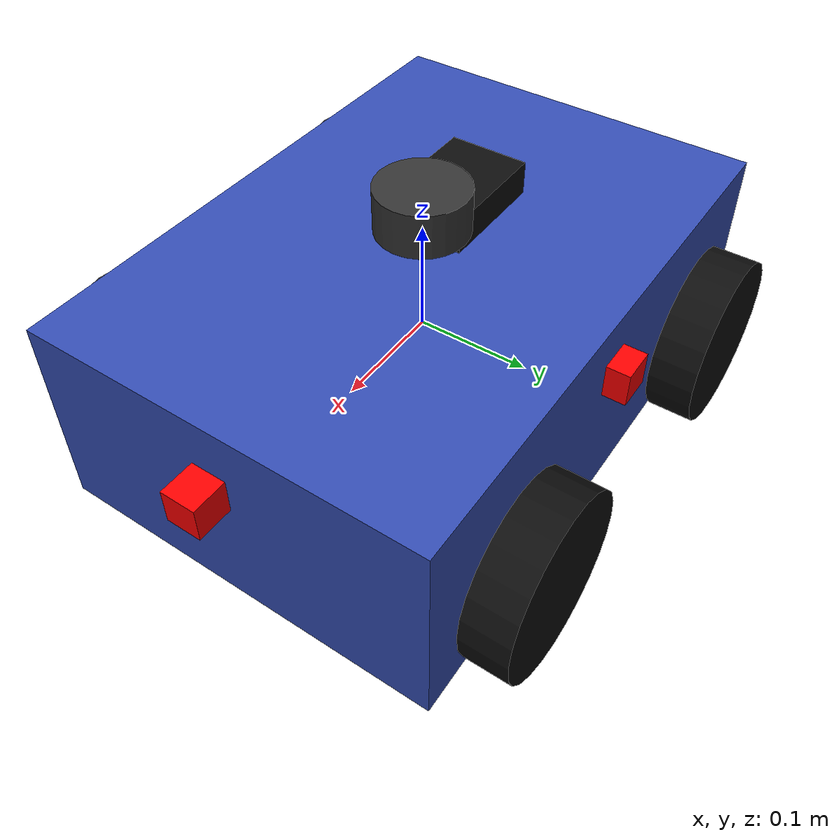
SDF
<?xml version="1.0" ?>
<sdf version="1.9">
  <model name="hikbot">

    <link name="base_link">
      <inertial>
        <mass>5.0</mass>
        <pose>0 0 0 0 0 0</pose>
        <inertia>
          <ixx>0.0645</ixx><iyy>0.1177</iyy><izz>0.1552</izz>
          <ixy>0</ixy><ixz>0</ixz><iyz>0</iyz>
        </inertia>
      </inertial>
      <visual name="chassis_visual">
        <geometry><box><size>0.50 0.35 0.18</size></box></geometry>
        <material>
          <ambient>0.15 0.25 0.55 1</ambient>
          <diffuse>0.20 0.30 0.70 1</diffuse>
          <specular>0.1 0.1 0.1 1</specular>
        </material>
      </visual>
      <collision name="chassis_collision">
        <geometry><box><size>0.50 0.35 0.18</size></box></geometry>
      </collision>

      <!-- Pi5 + Hailo HAT placeholder (visual only) -->
      <visual name="pi_box">
        <pose>-0.05 0 0.105 0 0 0</pose>
        <geometry><box><size>0.10 0.07 0.03</size></box></geometry>
        <material><ambient>0.05 0.05 0.05 1</ambient><diffuse>0.05 0.05 0.05 1</diffuse></material>
      </visual>

      <!-- ===================== IMU (BNO055) ===================== -->
      <sensor name="imu" type="imu">
        <pose>0 0 0.05 0 0 0</pose>
        <update_rate>100</update_rate>
        <always_on>true</always_on>
        <topic>imu</topic>
        <gz_frame_id>imu_link</gz_frame_id>
      </sensor>

      <!-- ===================== Stereo cameras ===================== -->
      <!-- Cam0 = left, Cam1 = right; 54 deg HFOV (V1.3 spec) -->
      <sensor name="cam0" type="camera">
        <pose>0.25 0.03 0.10 0 0 0</pose>
        <update_rate>30</update_rate>
        <always_on>true</always_on>
        <topic>cam0</topic>
        <gz_frame_id>cam0_link</gz_frame_id>
        <camera>
          <horizontal_fov>0.9425</horizontal_fov>
          <image><width>640</width><height>480</height><format>R8G8B8</format></image>
          <clip><near>0.05</near><far>50</far></clip>
        </camera>
      </sensor>
      <sensor name="cam1" type="camera">
        <pose>0.25 -0.03 0.10 0 0 0</pose>
        <update_rate>30</update_rate>
        <always_on>true</always_on>
        <topic>cam1</topic>
        <gz_frame_id>cam1_link</gz_frame_id>
        <camera>
          <horizontal_fov>0.9425</horizontal_fov>
          <image><width>640</width><height>480</height><format>R8G8B8</format></image>
          <clip><near>0.05</near><far>50</far></clip>
        </camera>
      </sensor>

      <!-- ===================== 4 ToF lasers ===================== -->
      <!-- Single-ray gpu_lidar, 0.05–8 m, 20 Hz. Front/Back/Left/Right. -->
      <sensor name="laser_front" type="gpu_lidar">
        <pose>0.27 0 0.04 0 0 0</pose>
        <update_rate>20</update_rate>
        <always_on>true</always_on>
        <topic>scan/front</topic>
        <gz_frame_id>laser_front_link</gz_frame_id>
        <lidar>
          <scan>
            <horizontal><samples>1</samples><resolution>1</resolution><min_angle>0</min_angle><max_angle>0</max_angle></horizontal>
            <vertical><samples>1</samples><resolution>1</resolution><min_angle>0</min_angle><max_angle>0</max_angle></vertical>
          </scan>
          <range><min>0.05</min><max>8.0</max><resolution>0.01</resolution></range>
        </lidar>
      </sensor>
      <sensor name="laser_back" type="gpu_lidar">
        <pose>-0.27 0 0.04 0 0 3.14159265</pose>
        <update_rate>20</update_rate>
        <always_on>true</always_on>
        <topic>scan/back</topic>
        <gz_frame_id>laser_back_link</gz_frame_id>
        <lidar>
          <scan>
            <horizontal><samples>1</samples><resolution>1</resolution><min_angle>0</min_angle><max_angle>0</max_angle></horizontal>
            <vertical><samples>1</samples><resolution>1</resolution><min_angle>0</min_angle><max_angle>0</max_angle></vertical>
          </scan>
          <range><min>0.05</min><max>8.0</max><resolution>0.01</resolution></range>
        </lidar>
      </sensor>
      <sensor name="laser_left" type="gpu_lidar">
        <pose>0 0.18 0.04 0 0 1.5707963</pose>
        <update_rate>20</update_rate>
        <always_on>true</always_on>
        <topic>scan/left</topic>
        <gz_frame_id>laser_left_link</gz_frame_id>
        <lidar>
          <scan>
            <horizontal><samples>1</samples><resolution>1</resolution><min_angle>0</min_angle><max_angle>0</max_angle></horizontal>
            <vertical><samples>1</samples><resolution>1</resolution><min_angle>0</min_angle><max_angle>0</max_angle></vertical>
          </scan>
          <range><min>0.05</min><max>8.0</max><resolution>0.01</resolution></range>
        </lidar>
      </sensor>
      <sensor name="laser_right" type="gpu_lidar">
        <pose>0 -0.18 0.04 0 0 -1.5707963</pose>
        <update_rate>20</update_rate>
        <always_on>true</always_on>
        <topic>scan/right</topic>
        <gz_frame_id>laser_right_link</gz_frame_id>
        <lidar>
          <scan>
            <horizontal><samples>1</samples><resolution>1</resolution><min_angle>0</min_angle><max_angle>0</max_angle></horizontal>
            <vertical><samples>1</samples><resolution>1</resolution><min_angle>0</min_angle><max_angle>0</max_angle></vertical>
          </scan>
          <range><min>0.05</min><max>8.0</max><resolution>0.01</resolution></range>
        </lidar>
      </sensor>

      <!-- ===================== 360° SLAM lidar ===================== -->
      <!-- 720 samples × 15 Hz, 0.15–12 m. Top-of-chassis turret for 2D occupancy mapping. -->
      <sensor name="lidar_360" type="gpu_lidar">
        <pose>0 0 0.13 0 0 0</pose>
        <update_rate>15</update_rate>
        <always_on>true</always_on>
        <topic>scan</topic>
        <gz_frame_id>lidar_link</gz_frame_id>
        <lidar>
          <scan>
            <horizontal>
              <samples>720</samples>
              <resolution>1</resolution>
              <min_angle>-3.14159265</min_angle>
              <max_angle> 3.14159265</max_angle>
            </horizontal>
            <vertical>
              <samples>1</samples><resolution>1</resolution>
              <min_angle>0</min_angle><max_angle>0</max_angle>
            </vertical>
          </scan>
          <range><min>0.15</min><max>12.0</max><resolution>0.01</resolution></range>
        </lidar>
      </sensor>

      <!-- Tiny visual cubes for the lasers so you can see them in Gazebo -->
      <visual name="laser_front_visual">
        <pose>0.27 0 0.04 0 0 0</pose>
        <geometry><box><size>0.03 0.03 0.03</size></box></geometry>
        <material><ambient>1 0 0 1</ambient><diffuse>1 0 0 1</diffuse></material>
      </visual>
      <visual name="laser_back_visual">
        <pose>-0.27 0 0.04 0 0 0</pose>
        <geometry><box><size>0.03 0.03 0.03</size></box></geometry>
        <material><ambient>1 0 0 1</ambient><diffuse>1 0 0 1</diffuse></material>
      </visual>
      <visual name="laser_left_visual">
        <pose>0 0.18 0.04 0 0 0</pose>
        <geometry><box><size>0.03 0.03 0.03</size></box></geometry>
        <material><ambient>1 0 0 1</ambient><diffuse>1 0 0 1</diffuse></material>
      </visual>
      <visual name="laser_right_visual">
        <pose>0 -0.18 0.04 0 0 0</pose>
        <geometry><box><size>0.03 0.03 0.03</size></box></geometry>
        <material><ambient>1 0 0 1</ambient><diffuse>1 0 0 1</diffuse></material>
      </visual>
      <visual name="lidar_360_visual">
        <pose>0 0 0.12 0 0 0</pose>
        <geometry><cylinder><radius>0.04</radius><length>0.04</length></cylinder></geometry>
        <material><ambient>0.1 0.1 0.1 1</ambient><diffuse>0.2 0.2 0.2 1</diffuse></material>
      </visual>
    </link>

    <link name="front_left_wheel">
      <pose>0.15 0.20 -0.025 1.5707963 0 0</pose>
      <inertial>
        <mass>0.5</mass>
        <inertia>
          <ixx>0.00077</ixx><iyy>0.00077</iyy><izz>0.00141</izz>
          <ixy>0</ixy><ixz>0</ixz><iyz>0</iyz>
        </inertia>
      </inertial>
      <visual name="visual">
        <geometry><cylinder><radius>0.075</radius><length>0.04</length></cylinder></geometry>
        <material><ambient>0.05 0.05 0.05 1</ambient><diffuse>0.05 0.05 0.05 1</diffuse></material>
      </visual>
      <collision name="collision">
        <geometry><cylinder><radius>0.075</radius><length>0.04</length></cylinder></geometry>
        <surface><friction><ode><mu>1.0</mu><mu2>1.0</mu2></ode></friction></surface>
      </collision>
    </link>
    <link name="front_right_wheel">
      <pose>0.15 -0.20 -0.025 1.5707963 0 0</pose>
      <inertial>
        <mass>0.5</mass>
        <inertia><ixx>0.00077</ixx><iyy>0.00077</iyy><izz>0.00141</izz><ixy>0</ixy><ixz>0</ixz><iyz>0</iyz></inertia>
      </inertial>
      <visual name="visual"><geometry><cylinder><radius>0.075</radius><length>0.04</length></cylinder></geometry>
        <material><ambient>0.05 0.05 0.05 1</ambient><diffuse>0.05 0.05 0.05 1</diffuse></material></visual>
      <collision name="collision"><geometry><cylinder><radius>0.075</radius><length>0.04</length></cylinder></geometry>
        <surface><friction><ode><mu>1.0</mu><mu2>1.0</mu2></ode></friction></surface></collision>
    </link>
    <link name="rear_left_wheel">
      <pose>-0.15 0.20 -0.025 1.5707963 0 0</pose>
      <inertial>
        <mass>0.5</mass>
        <inertia><ixx>0.00077</ixx><iyy>0.00077</iyy><izz>0.00141</izz><ixy>0</ixy><ixz>0</ixz><iyz>0</iyz></inertia>
      </inertial>
      <visual name="visual"><geometry><cylinder><radius>0.075</radius><length>0.04</length></cylinder></geometry>
        <material><ambient>0.05 0.05 0.05 1</ambient><diffuse>0.05 0.05 0.05 1</diffuse></material></visual>
      <collision name="collision"><geometry><cylinder><radius>0.075</radius><length>0.04</length></cylinder></geometry>
        <surface><friction><ode><mu>1.0</mu><mu2>1.0</mu2></ode></friction></surface></collision>
    </link>
    <link name="rear_right_wheel">
      <pose>-0.15 -0.20 -0.025 1.5707963 0 0</pose>
      <inertial>
        <mass>0.5</mass>
        <inertia><ixx>0.00077</ixx><iyy>0.00077</iyy><izz>0.00141</izz><ixy>0</ixy><ixz>0</ixz><iyz>0</iyz></inertia>
      </inertial>
      <visual name="visual"><geometry><cylinder><radius>0.075</radius><length>0.04</length></cylinder></geometry>
        <material><ambient>0.05 0.05 0.05 1</ambient><diffuse>0.05 0.05 0.05 1</diffuse></material></visual>
      <collision name="collision"><geometry><cylinder><radius>0.075</radius><length>0.04</length></cylinder></geometry>
        <surface><friction><ode><mu>1.0</mu><mu2>1.0</mu2></ode></friction></surface></collision>
    </link>

    <joint name="front_left_wheel_joint" type="revolute">
      <parent>base_link</parent><child>front_left_wheel</child>
      <axis><xyz expressed_in="__model__">0 1 0</xyz>
        <limit><lower>-1e16</lower><upper>1e16</upper></limit>
        <dynamics><friction>0.05</friction><damping>0.01</damping></dynamics>
      </axis>
    </joint>
    <joint name="front_right_wheel_joint" type="revolute">
      <parent>base_link</parent><child>front_right_wheel</child>
      <axis><xyz expressed_in="__model__">0 1 0</xyz>
        <limit><lower>-1e16</lower><upper>1e16</upper></limit>
        <dynamics><friction>0.05</friction><damping>0.01</damping></dynamics>
      </axis>
    </joint>
    <joint name="rear_left_wheel_joint" type="revolute">
      <parent>base_link</parent><child>rear_left_wheel</child>
      <axis><xyz expressed_in="__model__">0 1 0</xyz>
        <limit><lower>-1e16</lower><upper>1e16</upper></limit>
        <dynamics><friction>0.05</friction><damping>0.01</damping></dynamics>
      </axis>
    </joint>
    <joint name="rear_right_wheel_joint" type="revolute">
      <parent>base_link</parent><child>rear_right_wheel</child>
      <axis><xyz expressed_in="__model__">0 1 0</xyz>
        <limit><lower>-1e16</lower><upper>1e16</upper></limit>
        <dynamics><friction>0.05</friction><damping>0.01</damping></dynamics>
      </axis>
    </joint>

    <!-- =============================================================
         PLUGINS
         ============================================================= -->
    <!-- Skid-steer via DiffDrive: both left wheels share left_joint, both right wheels share right_joint -->
    <plugin filename="gz-sim-diff-drive-system" name="gz::sim::systems::DiffDrive">
      <left_joint>front_left_wheel_joint</left_joint>
      <left_joint>rear_left_wheel_joint</left_joint>
      <right_joint>front_right_wheel_joint</right_joint>
      <right_joint>rear_right_wheel_joint</right_joint>
      <wheel_separation>0.40</wheel_separation>
      <wheel_radius>0.075</wheel_radius>
      <topic>cmd_vel</topic>
      <odom_topic>odom</odom_topic>
      <tf_topic>tf_diff</tf_topic>
      <frame_id>odom</frame_id>
      <child_frame_id>base_link</child_frame_id>
      <odom_publish_frequency>50</odom_publish_frequency>
      <max_linear_velocity>1.5</max_linear_velocity>
      <max_angular_velocity>2.0</max_angular_velocity>
      <max_linear_acceleration>3.0</max_linear_acceleration>
      <max_angular_acceleration>3.0</max_angular_acceleration>
    </plugin>

    <plugin filename="gz-sim-joint-state-publisher-system" name="gz::sim::systems::JointStatePublisher">
      <topic>joint_states</topic>
    </plugin>
  </model>
</sdf>
